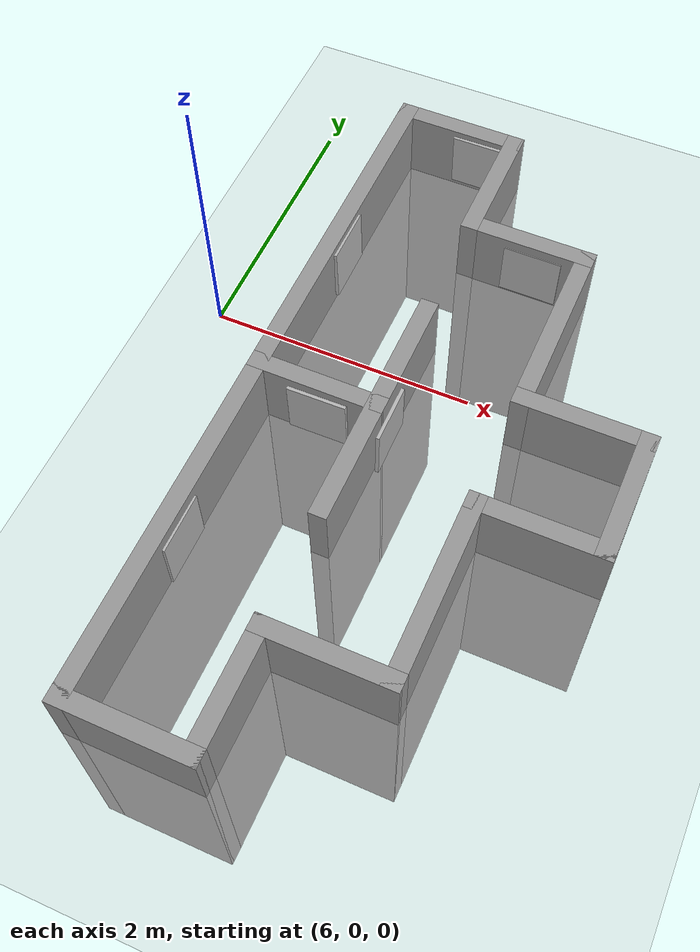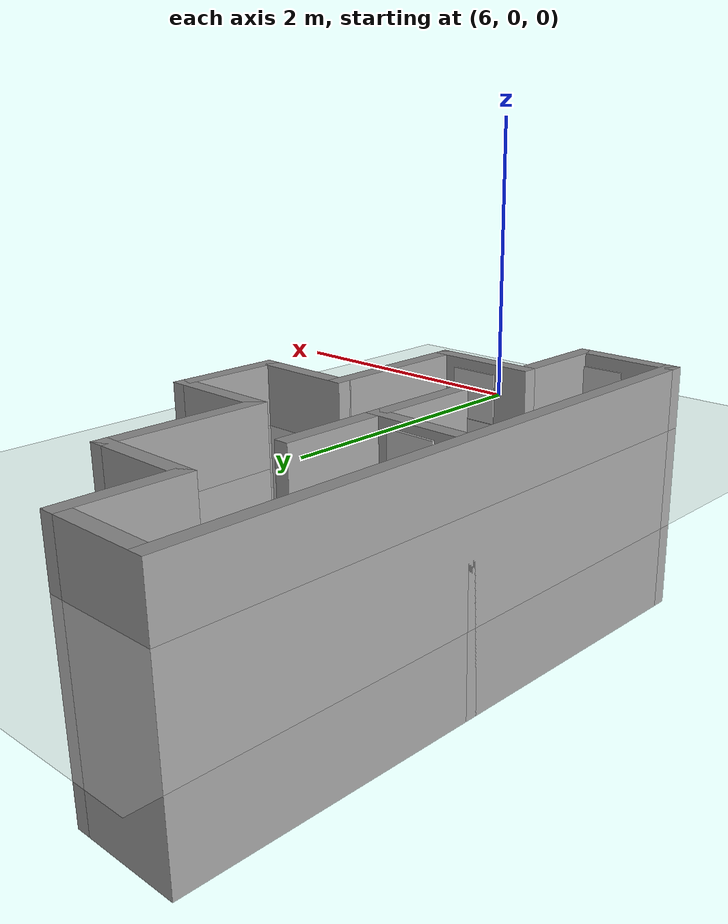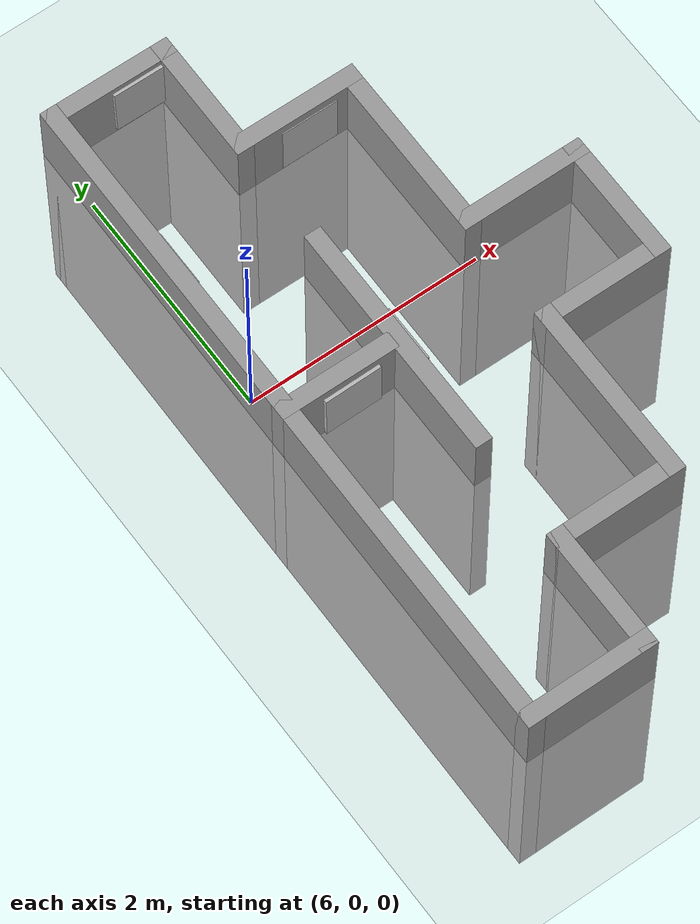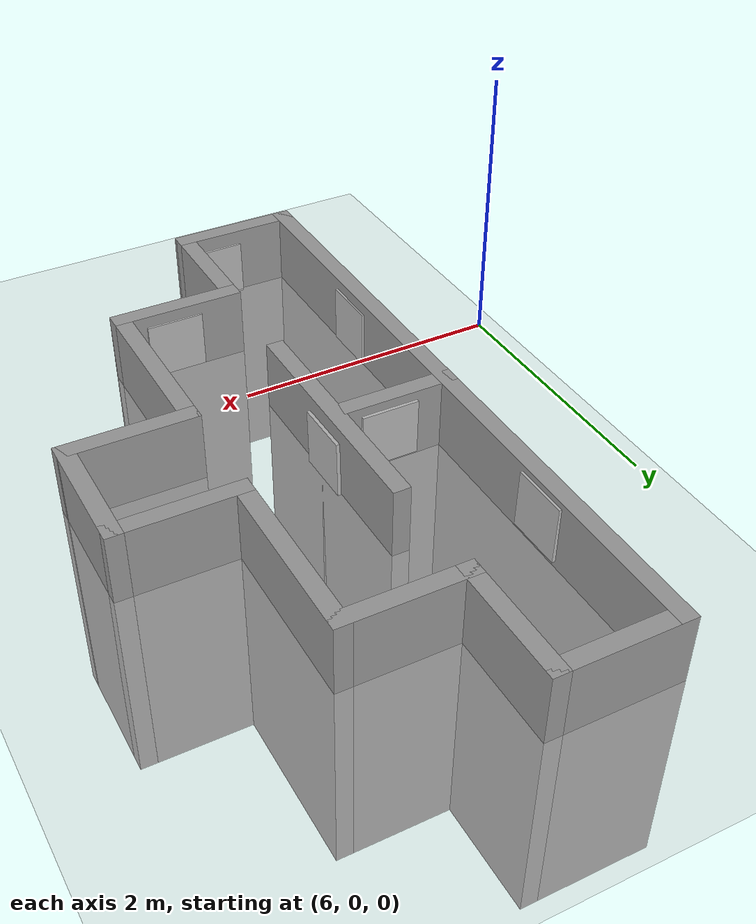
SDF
<sdf version="1.7">
 <world name="default">
  <physics name="default_physics" default="0" type="ode">
   <max_step_size>0.001</max_step_size>
   <real_time_factor>1</real_time_factor>
   <real_time_update_rate>1000</real_time_update_rate>
  </physics>
  <scene><ambient>0.7 0.7 0.7 1</ambient><background>0.7 0.7 0.7 1</background><shadows>1</shadows></scene>
  <light name="sun" type="directional">
   <pose>0 0 10 0 -0 0</pose>
   <diffuse>0.8 0.8 0.8 1</diffuse>
   <specular>0.1 0.1 0.1 1</specular>
   <attenuation>
    <range>1000</range>
    <constant>0.9</constant>
    <linear>0.01</linear>
    <quadratic>0.001</quadratic>
   </attenuation>
   <direction>-0.5 0.5 -1</direction>
   <spot><inner_angle>0</inner_angle><outer_angle>0</outer_angle><falloff>0</falloff></spot>
  </light>
  <model name="ground_plane">
   <static>1</static>
   <link name="link">
    <collision name="collision">
     <geometry><plane><normal>0 0 1</normal><size>100 100</size></plane></geometry>
     <surface>
      <contact><collide_bitmask>65535</collide_bitmask></contact>
      <friction><ode><mu>100</mu><mu2>50</mu2></ode></friction>
     </surface>
    </collision>
    <visual name="visual">
     <cast_shadows>0</cast_shadows>
     <geometry><plane><normal>0 0 1</normal><size>100 100</size></plane></geometry>
     <material>
      <script><uri>file://media/materials/scripts/gazebo.material</uri><name>Gazebo/Grey</name></script>
     </material>
    </visual>
   </link>
   <pose>0 0 -1 0 -0 0</pose>
  </model>
  <gravity>0 0 -9.8</gravity>
  <magnetic_field>6e-06 2.3e-05 -4.2e-05</magnetic_field>
  <atmosphere type="adiabatic"/>
  <spherical_coordinates>
   <surface_model>EARTH_WGS84</surface_model>
   <latitude_deg>0</latitude_deg>
   <longitude_deg>0</longitude_deg>
   <elevation>0</elevation>
   <heading_deg>0</heading_deg>
  </spherical_coordinates>
  <model name="tag_3">
   <static>1</static>
   <link name="link">
    <collision name="surface">
     <pose>0 0 1 0 -0 0</pose>
     <geometry><box><size>0.5 0.5 0.03</size></box></geometry>
     <surface><friction><ode><mu>0.6</mu><mu2>0.6</mu2></ode></friction></surface>
    </collision>
    <visual name="visual1">
     <pose>0 0 1 0 -0 0</pose>
     <geometry><box><size>0.5 0.5 0.03</size></box></geometry>
     <material>
      <script>
       <uri>model://miro_tag3/materials/scripts</uri>
       <uri>model://miro_tag3/materials/textures</uri>
       <name>miro_tag3/Diffuse</name>
      </script>
     </material>
    </visual>
   </link>
   <pose>7.02515 -3.92821 -0.77343 -1.56319 -1.5636 1e-06</pose>
  </model>
  <model name="tag_4">
   <static>1</static>
   <link name="link">
    <collision name="surface">
     <pose>0 0 1 0 -0 0</pose>
     <geometry><box><size>0.5 0.5 0.03</size></box></geometry>
     <surface><friction><ode><mu>0.6</mu><mu2>0.6</mu2></ode></friction></surface>
    </collision>
    <visual name="visual1">
     <pose>0 0 1 0 -0 0</pose>
     <geometry><box><size>0.5 0.5 0.03</size></box></geometry>
     <material>
      <script>
       <uri>model://miro_tag4/materials/scripts</uri>
       <uri>model://miro_tag4/materials/textures</uri>
       <name>miro_tag4/Diffuse</name>
      </script>
     </material>
    </visual>
   </link>
   <pose>6.82103 0.898756 -0.724716 -1.56815 -1.56181 -3.14159</pose>
  </model>
  <model name="tag_5">
   <static>1</static>
   <link name="link">
    <collision name="surface">
     <pose>0 0 1 0 -0 0</pose>
     <geometry><box><size>0.5 0.5 0.03</size></box></geometry>
     <surface><friction><ode><mu>0.6</mu><mu2>0.6</mu2></ode></friction></surface>
    </collision>
    <visual name="visual1">
     <pose>0 0 1 0 -0 0</pose>
     <geometry><box><size>0.5 0.5 0.03</size></box></geometry>
     <material>
      <script>
       <uri>model://miro_tag5/materials/scripts</uri>
       <uri>model://miro_tag5/materials/textures</uri>
       <name>miro_tag5/Diffuse</name>
      </script>
     </material>
    </visual>
   </link>
   <pose>6.84527 -0.919696 -0.721682 1.57542 -1.56424 3.14159</pose>
  </model>
  <model name="tag_6">
   <static>1</static>
   <link name="link">
    <collision name="surface">
     <pose>0 0 1 0 -0 0</pose>
     <geometry><box><size>0.5 0.5 0.03</size></box></geometry>
     <surface><friction><ode><mu>0.6</mu><mu2>0.6</mu2></ode></friction></surface>
    </collision>
    <visual name="visual1">
     <pose>0 0 1 0 -0 0</pose>
     <geometry><box><size>0.5 0.5 0.03</size></box></geometry>
     <material>
      <script>
       <uri>model://miro_tag6/materials/scripts</uri>
       <uri>model://miro_tag6/materials/textures</uri>
       <name>miro_tag6/Diffuse</name>
      </script>
     </material>
    </visual>
   </link>
   <pose>7.05492 3.90169 -0.697086 -1.58619 -1.55454 -3.14159</pose>
  </model>
  <model name="tag_8">
   <static>1</static>
   <link name="link">
    <collision name="surface">
     <pose>0 0 1 0 -0 0</pose>
     <geometry><box><size>0.5 0.5 0.03</size></box></geometry>
     <surface><friction><ode><mu>0.6</mu><mu2>0.6</mu2></ode></friction></surface>
    </collision>
    <visual name="visual1">
     <pose>0 0 1 0 -0 0</pose>
     <geometry><box><size>0.5 0.5 0.03</size></box></geometry>
     <material>
      <script>
       <uri>model://miro_tag7/materials/scripts</uri>
       <uri>model://miro_tag7/materials/textures</uri>
       <name>miro_tag7/Diffuse</name>
      </script>
     </material>
    </visual>
   </link>
   <pose>7.36196 -1.48634 -0.744142 -1.16296 1.56828 1.97863</pose>
  </model>
  <model name="tag">
   <static>1</static>
   <link name="link">
    <collision name="surface">
     <pose>0 0 1 0 -0 0</pose>
     <geometry><box><size>0.5 0.5 0.03</size></box></geometry>
     <surface><friction><ode><mu>0.6</mu><mu2>0.6</mu2></ode></friction></surface>
    </collision>
    <visual name="visual1">
     <pose>0 0 1 0 -0 0</pose>
     <geometry><box><size>0.5 0.5 0.03</size></box></geometry>
     <material>
      <script>
       <uri>model://miro_tag8/materials/scripts</uri>
       <uri>model://miro_tag8/materials/textures</uri>
       <name>miro_tag8/Diffuse</name>
      </script>
     </material>
    </visual>
   </link>
   <pose>7.38412 1.48374 -0.680677 -3.10652 1.55258 0.035081</pose>
  </model>
  <model name="tag_0">
   <static>1</static>
   <link name="link">
    <collision name="surface">
     <pose>0 0 1 0 -0 0</pose>
     <geometry><box><size>0.5 0.5 0.03</size></box></geometry>
     <surface><friction><ode><mu>0.6</mu><mu2>0.6</mu2></ode></friction></surface>
    </collision>
    <visual name="visual1">
     <pose>0 0 1 0 -0 0</pose>
     <geometry><box><size>0.5 0.5 0.03</size></box></geometry>
     <material>
      <script>
       <uri>model://miro_tag/materials/scripts</uri>
       <uri>model://miro_tag/materials/textures</uri>
       <name>miro_tag/Diffuse</name>
      </script>
     </material>
    </visual>
   </link>
   <pose>8.39409 0.010886 -0.768419 -0.527055 1.5524 2.61446</pose>
  </model>
  <model name="tag_1">
   <static>1</static>
   <link name="link">
    <collision name="surface">
     <pose>0 0 1 0 -0 0</pose>
     <geometry><box><size>0.5 0.5 0.03</size></box></geometry>
     <surface><friction><ode><mu>0.6</mu><mu2>0.6</mu2></ode></friction></surface>
    </collision>
    <visual name="visual1">
     <pose>0 0 1 0 -0 0</pose>
     <geometry><box><size>0.5 0.5 0.03</size></box></geometry>
     <material>
      <script>
       <uri>model://miro_tag1/materials/scripts</uri>
       <uri>model://miro_tag1/materials/textures</uri>
       <name>miro_tag1/Diffuse</name>
      </script>
     </material>
    </visual>
   </link>
   <pose>7.83573 -2.93596 -0.746306 0.005633 -1.57079 -1.57455</pose>
  </model>
  <model name="tag_2">
   <static>1</static>
   <link name="link">
    <collision name="surface">
     <pose>0 0 1 0 -0 0</pose>
     <geometry><box><size>0.5 0.5 0.03</size></box></geometry>
     <surface><friction><ode><mu>0.6</mu><mu2>0.6</mu2></ode></friction></surface>
    </collision>
    <visual name="visual1">
     <pose>0 0 1 0 -0 0</pose>
     <geometry><box><size>0.5 0.5 0.03</size></box></geometry>
     <material>
      <script>
       <uri>model://miro_tag2/materials/scripts</uri>
       <uri>model://miro_tag2/materials/textures</uri>
       <name>miro_tag2/Diffuse</name>
      </script>
     </material>
    </visual>
   </link>
   <pose>7.88227 2.91626 -0.738418 8e-06 -1.56717 1.56482</pose>
  </model>
  <model name="MiniTMaze">
   <pose>7.79047 -0.014408 -2.89433 0 -0 1.56577</pose>
   <link name="Wall_133">
    <collision name="Wall_133_Collision">
     <geometry><box><size>6.15 0.15 2.5</size></box></geometry>
     <pose>0 0 1.25 0 -0 0</pose>
    </collision>
    <visual name="Wall_133_Visual">
     <pose>0 0 1.25 0 -0 0</pose>
     <geometry><box><size>6.15 0.15 2.5</size></box></geometry>
     <material>
      <script><uri>file://media/materials/scripts/gazebo.material</uri><name>Gazebo/Grey</name></script>
      <ambient>1 1 1 1</ambient>
     </material>
     <meta><layer>0</layer></meta>
    </visual>
    <pose>0 1.5 0 0 -0 0</pose>
   </link>
   <link name="Wall_137">
    <collision name="Wall_137_Collision">
     <geometry><box><size>1.15 0.15 2.5</size></box></geometry>
     <pose>0 0 1.25 0 -0 0</pose>
    </collision>
    <visual name="Wall_137_Visual">
     <pose>0 0 1.25 0 -0 0</pose>
     <geometry><box><size>1.15 0.15 2.5</size></box></geometry>
     <material>
      <script><uri>file://media/materials/scripts/gazebo.material</uri><name>Gazebo/Grey</name></script>
      <ambient>1 1 1 1</ambient>
     </material>
     <meta><layer>0</layer></meta>
    </visual>
    <pose>3 1 0 0 -0 -1.5708</pose>
   </link>
   <link name="Wall_139">
    <collision name="Wall_139_Collision">
     <geometry><box><size>1.15 0.15 2.5</size></box></geometry>
     <pose>0 0 1.25 0 -0 0</pose>
    </collision>
    <visual name="Wall_139_Visual">
     <pose>0 0 1.25 0 -0 0</pose>
     <geometry><box><size>1.15 0.15 2.5</size></box></geometry>
     <material>
      <script><uri>file://media/materials/scripts/gazebo.material</uri><name>Gazebo/Grey</name></script>
      <ambient>1 1 1 1</ambient>
     </material>
     <meta><layer>0</layer></meta>
    </visual>
    <pose>-3 1 0 0 -0 -1.5708</pose>
   </link>
   <link name="Wall_140">
    <collision name="Wall_140_Collision">
     <geometry><box><size>1.15 0.15 2.5</size></box></geometry>
     <pose>0 0 1.25 0 -0 0</pose>
    </collision>
    <visual name="Wall_140_Visual">
     <pose>0 0 1.25 0 -0 0</pose>
     <geometry><box><size>1.15 0.15 2.5</size></box></geometry>
     <material>
      <script><uri>file://media/materials/scripts/gazebo.material</uri><name>Gazebo/Grey</name></script>
      <ambient>1 1 1 1</ambient>
     </material>
     <meta><layer>0</layer></meta>
    </visual>
    <pose>-2.5 0.5 0 0 -0 0</pose>
   </link>
   <link name="Wall_142">
    <collision name="Wall_142_Collision">
     <geometry><box><size>1.15 0.15 2.5</size></box></geometry>
     <pose>0 0 1.25 0 -0 0</pose>
    </collision>
    <visual name="Wall_142_Visual">
     <pose>0 0 1.25 0 -0 0</pose>
     <geometry><box><size>1.15 0.15 2.5</size></box></geometry>
     <material>
      <script><uri>file://media/materials/scripts/gazebo.material</uri><name>Gazebo/Grey</name></script>
      <ambient>1 1 1 1</ambient>
     </material>
     <meta><layer>0</layer></meta>
    </visual>
    <pose>2.5 0.5 0 0 -0 3.14159</pose>
   </link>
   <link name="Wall_146">
    <collision name="Wall_146_Collision">
     <geometry><box><size>2.15 0.15 2.5</size></box></geometry>
     <pose>0 0 1.25 0 -0 0</pose>
    </collision>
    <visual name="Wall_146_Visual">
     <pose>0 0 1.25 0 -0 0</pose>
     <geometry><box><size>2.15 0.15 2.5</size></box></geometry>
     <material>
      <script><uri>file://media/materials/scripts/gazebo.material</uri><name>Gazebo/Grey</name></script>
      <ambient>1 1 1 1</ambient>
     </material>
     <meta><layer>0</layer></meta>
    </visual>
    <pose>0 0.5 0 0 -0 3.14159</pose>
   </link>
   <link name="Wall_148">
    <collision name="Wall_148_Collision">
     <geometry><box><size>1.15 0.15 2.5</size></box></geometry>
     <pose>0 0 1.25 0 -0 0</pose>
    </collision>
    <visual name="Wall_148_Visual">
     <pose>0 0 1.25 0 -0 0</pose>
     <geometry><box><size>1.15 0.15 2.5</size></box></geometry>
     <material>
      <script><uri>file://media/materials/scripts/gazebo.material</uri><name>Gazebo/Grey</name></script>
      <ambient>1 1 1 1</ambient>
     </material>
     <meta><layer>0</layer></meta>
    </visual>
    <pose>0 1 0 0 -0 1.5708</pose>
   </link>
   <link name="Wall_150">
    <collision name="Wall_150_Collision">
     <geometry><box><size>1.15 0.15 2.5</size></box></geometry>
     <pose>0 0 1.25 0 -0 0</pose>
    </collision>
    <visual name="Wall_150_Visual">
     <pose>0 0 1.25 0 -0 0</pose>
     <geometry><box><size>1.15 0.15 2.5</size></box></geometry>
     <material>
      <script><uri>file://media/materials/scripts/gazebo.material</uri><name>Gazebo/Grey</name></script>
      <ambient>1 1 1 1</ambient>
     </material>
     <meta><layer>0</layer></meta>
    </visual>
    <pose>-2 0 0 0 -0 -1.5708</pose>
   </link>
   <link name="Wall_152">
    <collision name="Wall_152_Collision">
     <geometry><box><size>1.15 0.15 2.5</size></box></geometry>
     <pose>0 0 1.25 0 -0 0</pose>
    </collision>
    <visual name="Wall_152_Visual">
     <pose>0 0 1.25 0 -0 0</pose>
     <geometry><box><size>1.15 0.15 2.5</size></box></geometry>
     <material>
      <script><uri>file://media/materials/scripts/gazebo.material</uri><name>Gazebo/Grey</name></script>
      <ambient>1 1 1 1</ambient>
     </material>
     <meta><layer>0</layer></meta>
    </visual>
    <pose>2 0 0 0 -0 -1.5708</pose>
   </link>
   <link name="Wall_154">
    <collision name="Wall_154_Collision">
     <geometry><box><size>1.15 0.15 2.5</size></box></geometry>
     <pose>0 0 1.25 0 -0 0</pose>
    </collision>
    <visual name="Wall_154_Visual">
     <pose>0 0 1.25 0 -0 0</pose>
     <geometry><box><size>1.15 0.15 2.5</size></box></geometry>
     <material>
      <script><uri>file://media/materials/scripts/gazebo.material</uri><name>Gazebo/Grey</name></script>
      <ambient>1 1 1 1</ambient>
     </material>
     <meta><layer>0</layer></meta>
    </visual>
    <pose>0 -1.5 0 0 -0 0</pose>
   </link>
   <link name="Wall_156">
    <collision name="Wall_156_Collision">
     <geometry><box><size>1.65 0.15 2.5</size></box></geometry>
     <pose>0 0 1.25 0 -0 0</pose>
    </collision>
    <visual name="Wall_156_Visual">
     <pose>0 0 1.25 0 -0 0</pose>
     <geometry><box><size>1.65 0.15 2.5</size></box></geometry>
     <material>
      <script><uri>file://media/materials/scripts/gazebo.material</uri><name>Gazebo/Grey</name></script>
      <ambient>1 1 1 1</ambient>
     </material>
     <meta><layer>0</layer></meta>
    </visual>
    <pose>1.25 -0.5 0 0 -0 3.14159</pose>
   </link>
   <link name="Wall_158">
    <collision name="Wall_158_Collision">
     <geometry><box><size>1.65 0.15 2.5</size></box></geometry>
     <pose>0 0 1.25 0 -0 0</pose>
    </collision>
    <visual name="Wall_158_Visual">
     <pose>0 0 1.25 0 -0 0</pose>
     <geometry><box><size>1.65 0.15 2.5</size></box></geometry>
     <material>
      <script><uri>file://media/materials/scripts/gazebo.material</uri><name>Gazebo/Grey</name></script>
      <ambient>1 1 1 1</ambient>
     </material>
     <meta><layer>0</layer></meta>
    </visual>
    <pose>-1.25 -0.5 0 0 -0 0</pose>
   </link>
   <link name="Wall_160">
    <collision name="Wall_160_Collision">
     <geometry><box><size>1.15 0.15 2.5</size></box></geometry>
     <pose>0 0 1.25 0 -0 0</pose>
    </collision>
    <visual name="Wall_160_Visual">
     <pose>0 0 1.25 0 -0 0</pose>
     <geometry><box><size>1.15 0.15 2.5</size></box></geometry>
     <material>
      <script><uri>file://media/materials/scripts/gazebo.material</uri><name>Gazebo/Grey</name></script>
      <ambient>1 1 1 1</ambient>
     </material>
     <meta><layer>0</layer></meta>
    </visual>
    <pose>-0.5 -1 0 0 -0 -1.5708</pose>
   </link>
   <link name="Wall_162">
    <collision name="Wall_162_Collision">
     <geometry><box><size>1.15 0.15 2.5</size></box></geometry>
     <pose>0 0 1.25 0 -0 0</pose>
    </collision>
    <visual name="Wall_162_Visual">
     <pose>0 0 1.25 0 -0 0</pose>
     <geometry><box><size>1.15 0.15 2.5</size></box></geometry>
     <material>
      <script><uri>file://media/materials/scripts/gazebo.material</uri><name>Gazebo/Grey</name></script>
      <ambient>1 1 1 1</ambient>
     </material>
     <meta><layer>0</layer></meta>
    </visual>
    <pose>0.5 -1 0 0 -0 -1.5708</pose>
   </link>
   <static>1</static>
  </model>
 </world>
</sdf>
